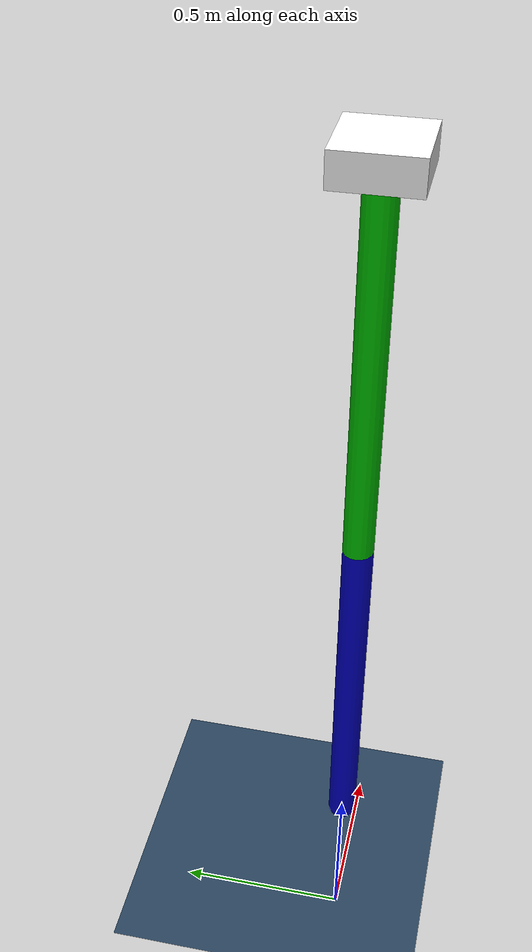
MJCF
<mujoco model="double_pendulum">
    <compiler angle="degree" coordinate="local"/>
    <option timestep="0.001" solver="Newton" gravity="0 0 -9.81"/>

    <visual>
        <headlight diffuse="0.6 0.6 0.6" ambient="0.3 0.3 0.3" specular="0 0 0"/>
    </visual>

	<asset>
		<texture type="skybox" builtin="gradient" rgb1="0.3 0.5 0.7" rgb2="0 0 0" width="512" height="3072"/>
		<texture type="2d" name="groundplane" builtin="checker" mark="edge" rgb1="0.2 0.3 0.4" rgb2="0.1 0.2 0.3"
		markrgb="0.8 0.8 0.8" width="300" height="300"/>
		<material name="groundplane" texture="groundplane" texuniform="true" texrepeat="5 5" reflectance="0.2"/>
	</asset>

    <worldbody>
	    <light pos="0 0 5.5" dir="0 0 -1" directional="true"/>
		<geom name="floor" size="0 0 0.05" type="plane" material="groundplane"/>

        <body name="fixed" pos="0 0 2.5">
            <geom name="fixed_support"
                  type="box"
                  size="0.1 0.1 0.04"
                  rgba="1.0 1.0 1.0 1"/>

            <body name="link1" pos="0 0 0">
                <joint name="pin" axis="0 1 0"/>
                <inertial mass="1.0" pos="0.0 0.0 -0.5"
                fullinertia="1.0e-10 0.0 0.0 0.0 0.0 0.0"/>
                <geom name="rod1"
                      type="capsule"
                      fromto="0 0 0  0 0 -1.0"
                      size="0.04"
                      rgba="0 0.8 0 1"/>

                <body name="link2" pos="0 0 -1.0">
                    <inertial mass="1.0" pos="0.0 0.0 -0.5"
                    fullinertia="1.0e-10 0.0 0.0 0.0 0.0 0.0"/>
                    <joint name="pin2" axis="0 1 0"/>
                    <geom name="rod2"
                          type="capsule"
                          fromto="0 0 0  0 0 -1.0"
                          size="0.04"
                          rgba="0 0 0.8 1"/>
                </body>
            </body>
        </body>
    </worldbody>

    <actuator>
        <motor name="torque1" joint="pin" gear="1" ctrllimited="true" ctrlrange="-100 100"/>
        <motor name="torque2" joint="pin2" gear="1" ctrllimited="true" ctrlrange="-100 100"/>
    </actuator>
</mujoco>
